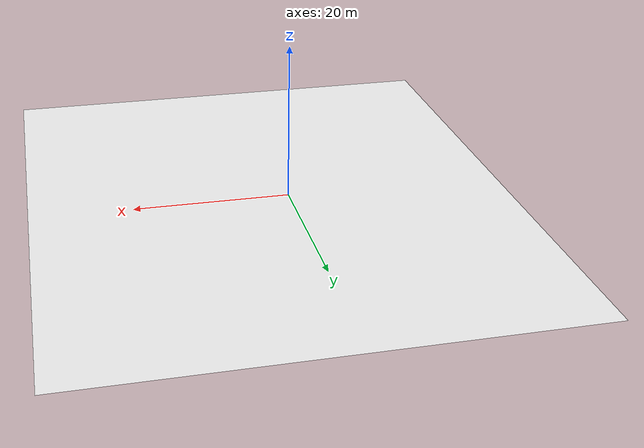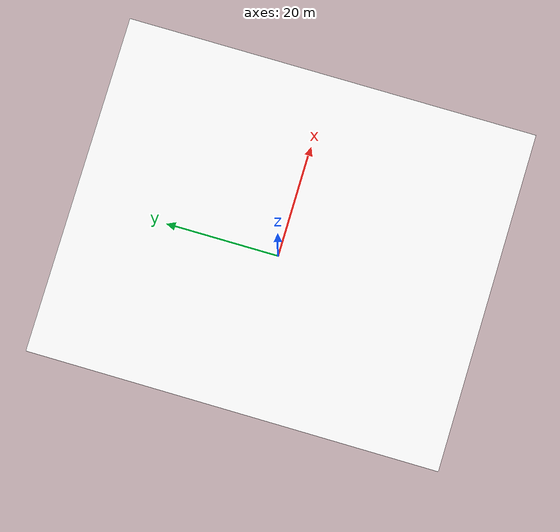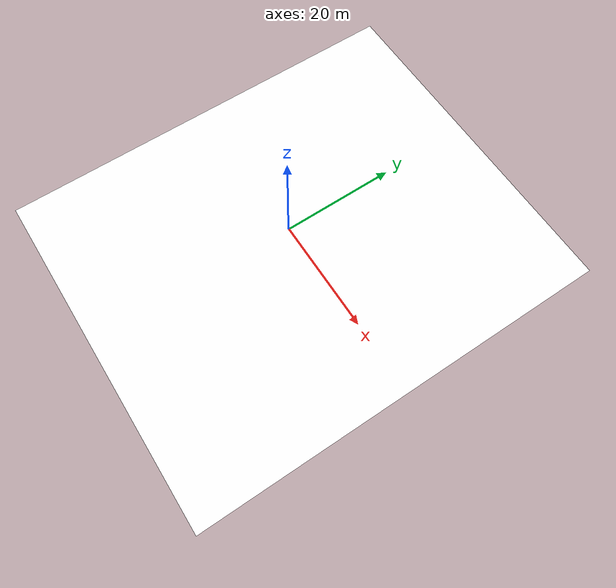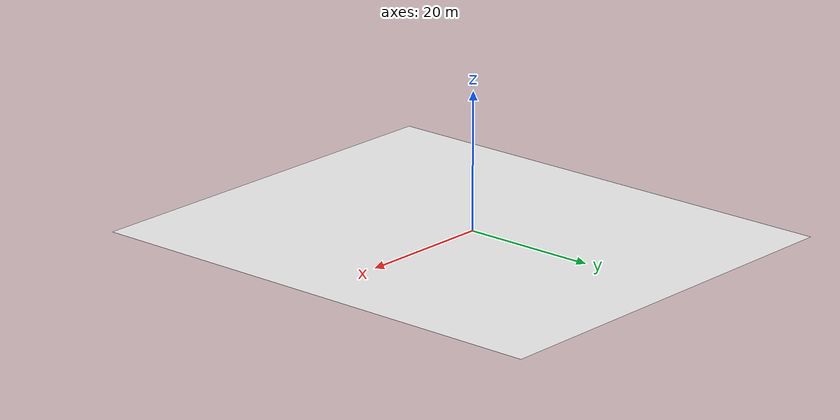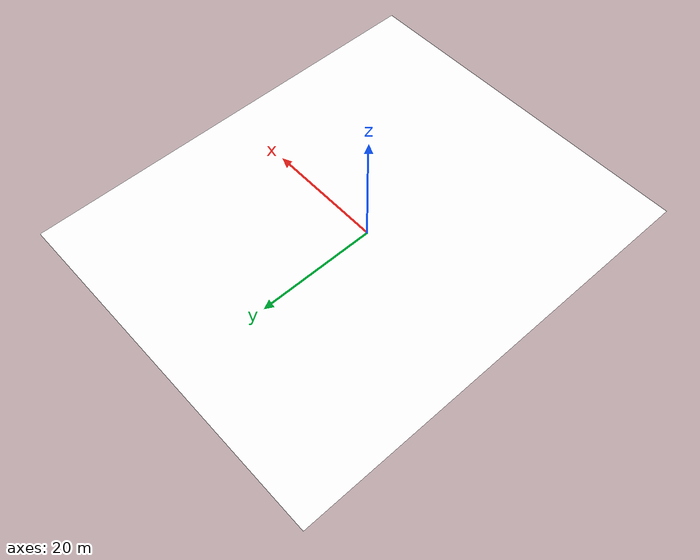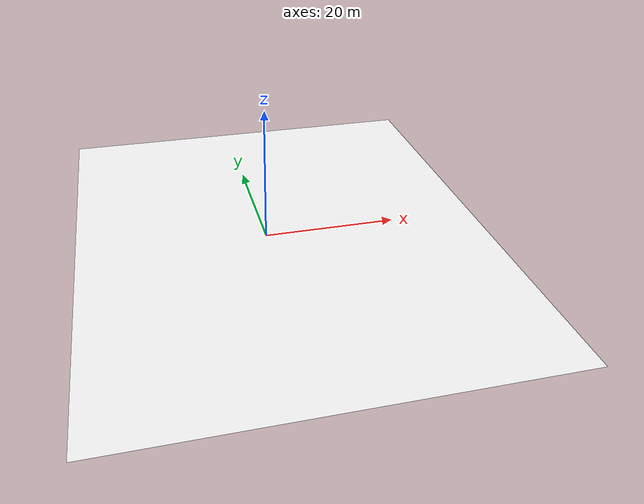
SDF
<?xml version="1.0" ?>
<sdf version="1.8">
  <world name="CourseMap">

    <!-- Light source -->
    <light type="directional" name="sun">
    <cast_shadows>true</cast_shadows>
    <pose>0 0 10 0 0 0</pose>
    <diffuse>0.6 0.6 0.6 1</diffuse>
    <specular>0.1 0.1 0.1 1</specular>
    <attenuation>
        <range>1000</range>
        <constant>0.9</constant>
        <linear>0.01</linear>
        <quadratic>0.001</quadratic>
    </attenuation>
    <direction>-0.5 0.1 -0.9</direction>
    </light>

    <!-- Include the custom course model -->
    <include>
      <uri>file://./model.sdf</uri>
      <pose>2.5 0 0.15 0 0 -1.57</pose>
      <name>barrel1</name>
    </include>

    <physics type="ode">
      <max_step_size>0.001</max_step_size>
      <real_time_update_rate>1000</real_time_update_rate>
    </physics>

    <scene>
      <ambient>0.4 0.4 0.4 1</ambient>
      <background>0.7 0.7 0.7 1</background>
    </scene>

  </world>
</sdf>

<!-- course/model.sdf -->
<sdf version="1.8">
  <model name="test">
    <static>true</static>
    <link name="testlink">
      <visual name="Plane">
        <geometry>
          <mesh>
            <uri>meshes/model.dae</uri>
            <submesh>
              <name>Plane</name>
            </submesh>
          </mesh>
        </geometry>
        <material>
          <ambient>1 0 0 1.0</ambient>
          <diffuse>1.0 1.0 1.0 1.0</diffuse>
          <specular>0.0 0.0 0.0 1.0</specular>
          <texture>materials/textures/igvc_empty_track.png</texture>
          <pbr>
            <metal>
              <albedo_map>materials/textures/igvc_empty_track.png</albedo_map>
            </metal>
          </pbr>
        </material>
      </visual>
      <light name="Light" type="point">
        <diffuse>1.0 1.0 1.0 1.0</diffuse>
        <color>1.0 1.0 1.0</color>
        <cutoff_distance>25.0</cutoff_distance>
        <intensity>1.0</intensity>
        <specular_factor>1.0</specular_factor>
        <volume_factor>1.0</volume_factor>
        <cast_shadows>true</cast_shadows>
        <intensity>1.0</intensity>
      </light>
      <collision name="collision">
        <geometry>
          <mesh>
            <uri>meshes/model.dae</uri>
          </mesh>
        </geometry>
        <surface/>
        <contact/>
        <collide_bitmask>0x01</collide_bitmask>
      </collision>
    </link>
  </model>
</sdf>
